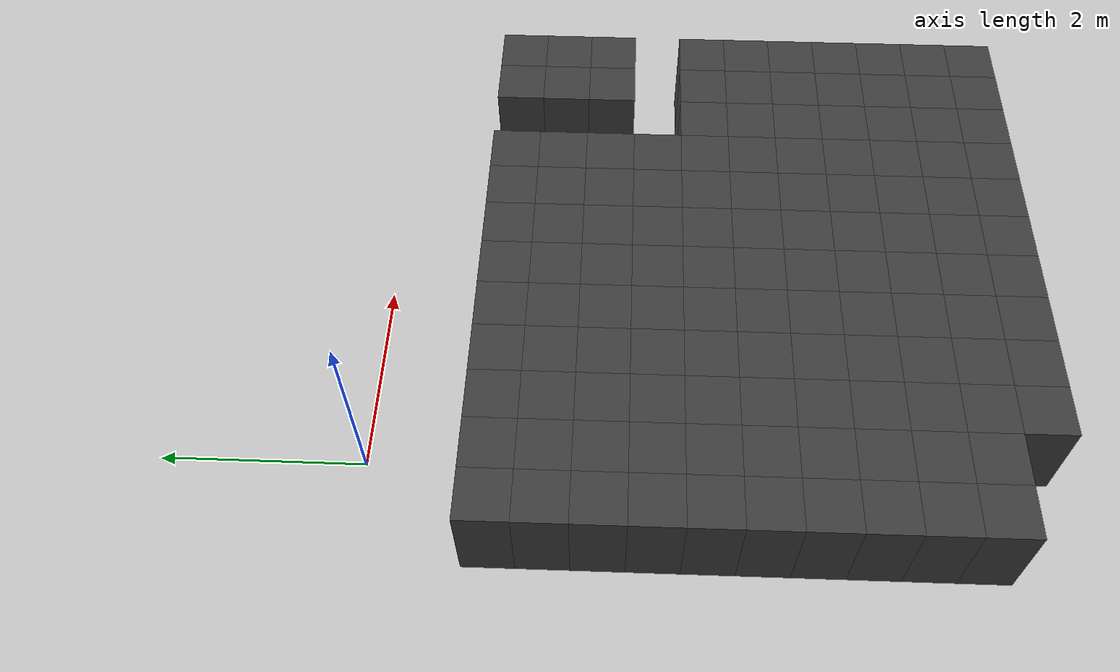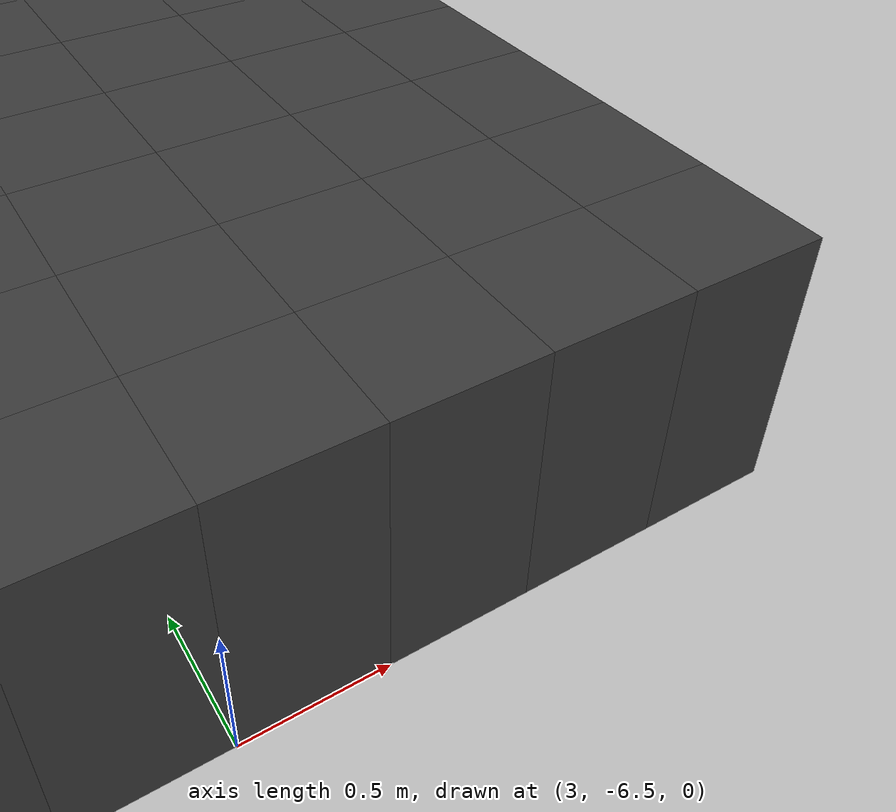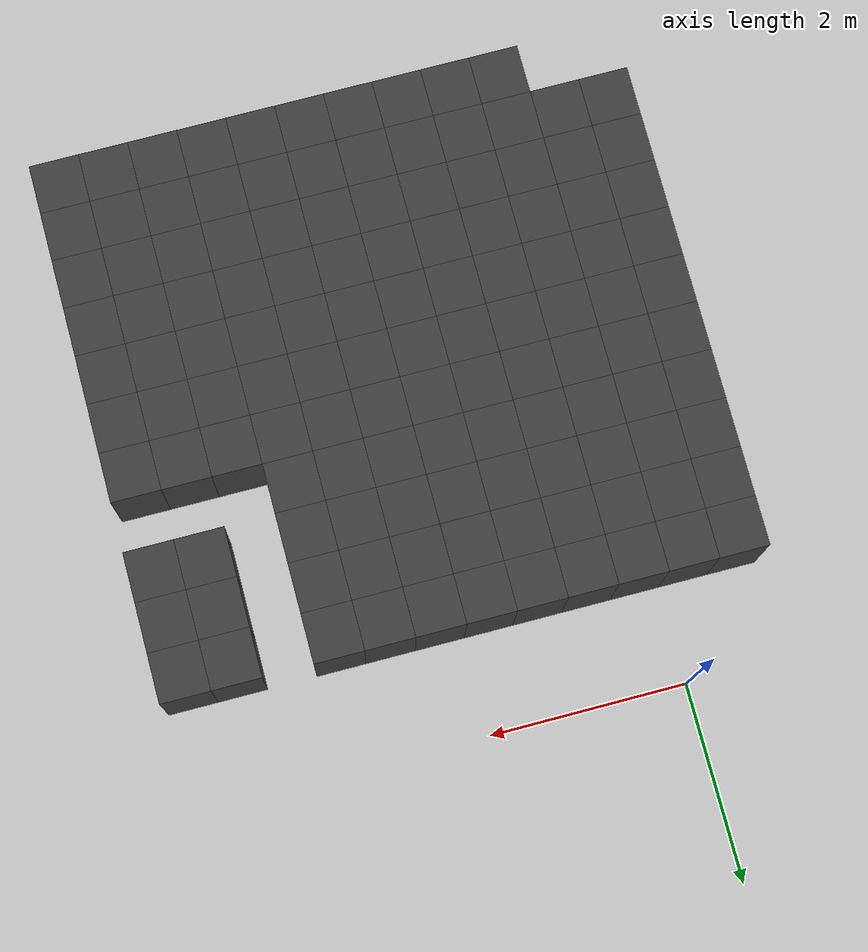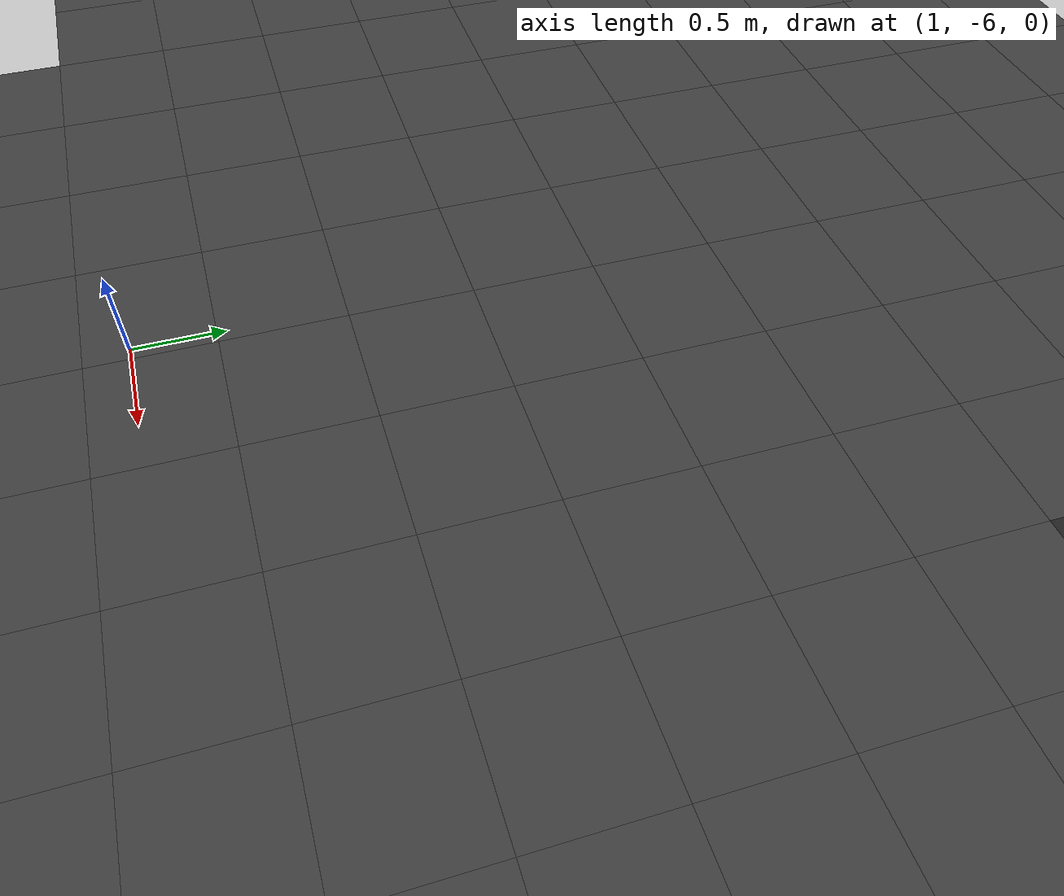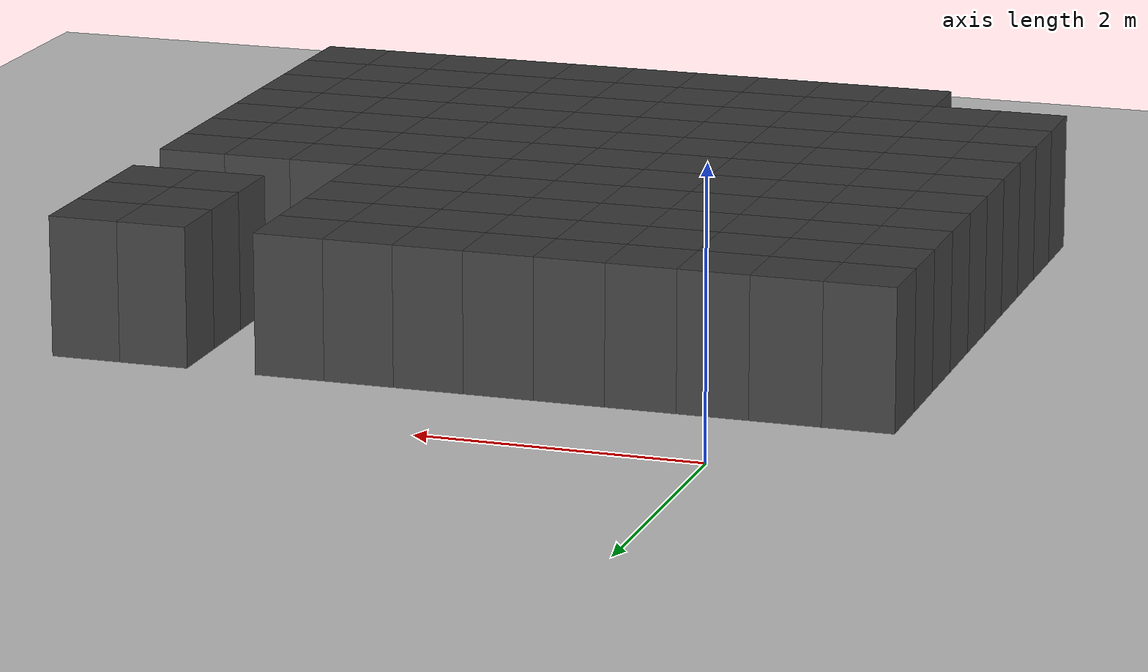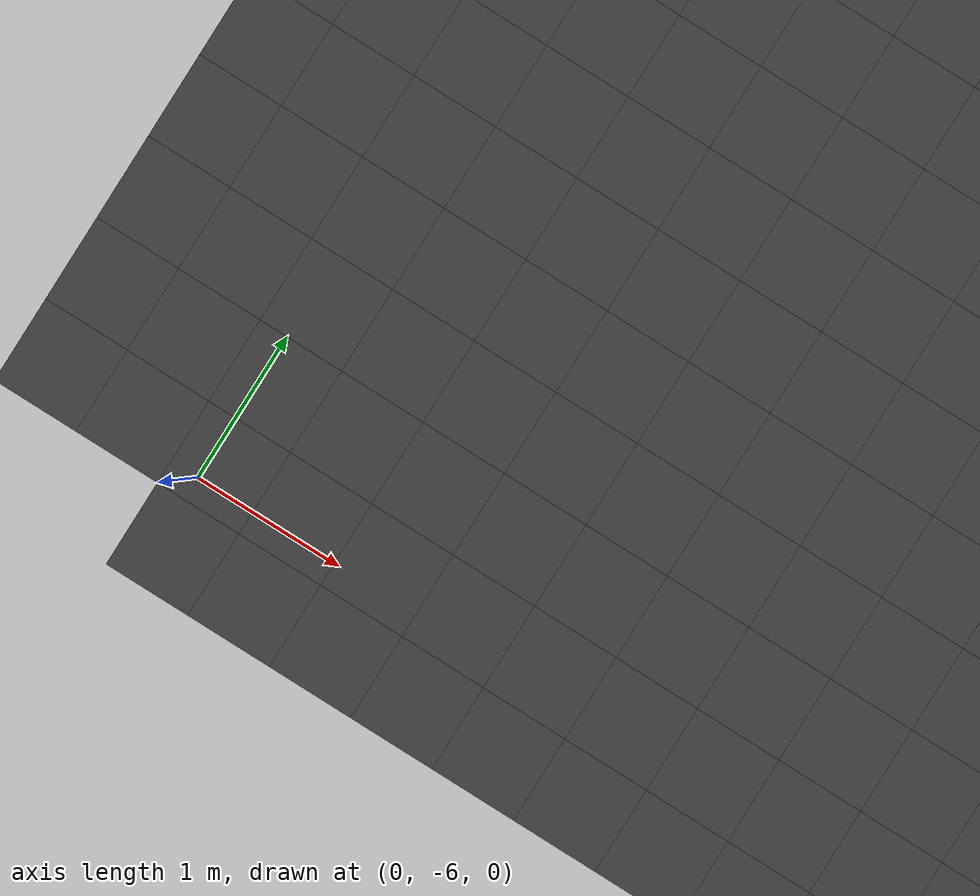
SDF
<sdf version="1.7">
 <world name="map_10726">
  <model name="ground_plane">
   <static>true</static>
   <link name="link">
    <collision name="collision">
     <geometry><plane><normal>0 0 1</normal><size>200 200</size></plane></geometry>
    </collision>
    <visual name="visual">
     <geometry><plane><normal>0 0 1</normal><size>200 200</size></plane></geometry>
     <material><ambient>0.8 0.8 0.8 1</ambient><diffuse>0.8 0.8 0.8 1</diffuse></material>
    </visual>
   </link>
  </model>
  <model name="maze_environment">
   <static>true</static>
   <link name="wall_1214">
    <pose>-0.750 -1.250 0.500 0 0 0</pose>
    <collision name="col"><geometry><box><size>0.5 0.5 1.0</size></box></geometry></collision>
    <visual name="vis">
     <geometry><box><size>0.5 0.5 1.0</size></box></geometry>
     <material><ambient>0.15 0.15 0.15 1</ambient><diffuse>0.25 0.25 0.25 1</diffuse></material>
    </visual>
   </link>
   <link name="wall_1215">
    <pose>-0.250 -1.250 0.500 0 0 0</pose>
    <collision name="col"><geometry><box><size>0.5 0.5 1.0</size></box></geometry></collision>
    <visual name="vis">
     <geometry><box><size>0.5 0.5 1.0</size></box></geometry>
     <material><ambient>0.15 0.15 0.15 1</ambient><diffuse>0.25 0.25 0.25 1</diffuse></material>
    </visual>
   </link>
   <link name="wall_1216">
    <pose>0.250 -1.250 0.500 0 0 0</pose>
    <collision name="col"><geometry><box><size>0.5 0.5 1.0</size></box></geometry></collision>
    <visual name="vis">
     <geometry><box><size>0.5 0.5 1.0</size></box></geometry>
     <material><ambient>0.15 0.15 0.15 1</ambient><diffuse>0.25 0.25 0.25 1</diffuse></material>
    </visual>
   </link>
   <link name="wall_1217">
    <pose>0.750 -1.250 0.500 0 0 0</pose>
    <collision name="col"><geometry><box><size>0.5 0.5 1.0</size></box></geometry></collision>
    <visual name="vis">
     <geometry><box><size>0.5 0.5 1.0</size></box></geometry>
     <material><ambient>0.15 0.15 0.15 1</ambient><diffuse>0.25 0.25 0.25 1</diffuse></material>
    </visual>
   </link>
   <link name="wall_1218">
    <pose>1.250 -1.250 0.500 0 0 0</pose>
    <collision name="col"><geometry><box><size>0.5 0.5 1.0</size></box></geometry></collision>
    <visual name="vis">
     <geometry><box><size>0.5 0.5 1.0</size></box></geometry>
     <material><ambient>0.15 0.15 0.15 1</ambient><diffuse>0.25 0.25 0.25 1</diffuse></material>
    </visual>
   </link>
   <link name="wall_1219">
    <pose>1.750 -1.250 0.500 0 0 0</pose>
    <collision name="col"><geometry><box><size>0.5 0.5 1.0</size></box></geometry></collision>
    <visual name="vis">
     <geometry><box><size>0.5 0.5 1.0</size></box></geometry>
     <material><ambient>0.15 0.15 0.15 1</ambient><diffuse>0.25 0.25 0.25 1</diffuse></material>
    </visual>
   </link>
   <link name="wall_1220">
    <pose>2.250 -1.250 0.500 0 0 0</pose>
    <collision name="col"><geometry><box><size>0.5 0.5 1.0</size></box></geometry></collision>
    <visual name="vis">
     <geometry><box><size>0.5 0.5 1.0</size></box></geometry>
     <material><ambient>0.15 0.15 0.15 1</ambient><diffuse>0.25 0.25 0.25 1</diffuse></material>
    </visual>
   </link>
   <link name="wall_1221">
    <pose>2.750 -1.250 0.500 0 0 0</pose>
    <collision name="col"><geometry><box><size>0.5 0.5 1.0</size></box></geometry></collision>
    <visual name="vis">
     <geometry><box><size>0.5 0.5 1.0</size></box></geometry>
     <material><ambient>0.15 0.15 0.15 1</ambient><diffuse>0.25 0.25 0.25 1</diffuse></material>
    </visual>
   </link>
   <link name="wall_1222">
    <pose>3.250 -1.250 0.500 0 0 0</pose>
    <collision name="col"><geometry><box><size>0.5 0.5 1.0</size></box></geometry></collision>
    <visual name="vis">
     <geometry><box><size>0.5 0.5 1.0</size></box></geometry>
     <material><ambient>0.15 0.15 0.15 1</ambient><diffuse>0.25 0.25 0.25 1</diffuse></material>
    </visual>
   </link>
   <link name="wall_1223">
    <pose>4.250 -1.250 0.500 0 0 0</pose>
    <collision name="col"><geometry><box><size>0.5 0.5 1.0</size></box></geometry></collision>
    <visual name="vis">
     <geometry><box><size>0.5 0.5 1.0</size></box></geometry>
     <material><ambient>0.15 0.15 0.15 1</ambient><diffuse>0.25 0.25 0.25 1</diffuse></material>
    </visual>
   </link>
   <link name="wall_1224">
    <pose>4.750 -1.250 0.500 0 0 0</pose>
    <collision name="col"><geometry><box><size>0.5 0.5 1.0</size></box></geometry></collision>
    <visual name="vis">
     <geometry><box><size>0.5 0.5 1.0</size></box></geometry>
     <material><ambient>0.15 0.15 0.15 1</ambient><diffuse>0.25 0.25 0.25 1</diffuse></material>
    </visual>
   </link>
   <link name="wall_1254">
    <pose>-0.750 -1.750 0.500 0 0 0</pose>
    <collision name="col"><geometry><box><size>0.5 0.5 1.0</size></box></geometry></collision>
    <visual name="vis">
     <geometry><box><size>0.5 0.5 1.0</size></box></geometry>
     <material><ambient>0.15 0.15 0.15 1</ambient><diffuse>0.25 0.25 0.25 1</diffuse></material>
    </visual>
   </link>
   <link name="wall_1255">
    <pose>-0.250 -1.750 0.500 0 0 0</pose>
    <collision name="col"><geometry><box><size>0.5 0.5 1.0</size></box></geometry></collision>
    <visual name="vis">
     <geometry><box><size>0.5 0.5 1.0</size></box></geometry>
     <material><ambient>0.15 0.15 0.15 1</ambient><diffuse>0.25 0.25 0.25 1</diffuse></material>
    </visual>
   </link>
   <link name="wall_1256">
    <pose>0.250 -1.750 0.500 0 0 0</pose>
    <collision name="col"><geometry><box><size>0.5 0.5 1.0</size></box></geometry></collision>
    <visual name="vis">
     <geometry><box><size>0.5 0.5 1.0</size></box></geometry>
     <material><ambient>0.15 0.15 0.15 1</ambient><diffuse>0.25 0.25 0.25 1</diffuse></material>
    </visual>
   </link>
   <link name="wall_1257">
    <pose>0.750 -1.750 0.500 0 0 0</pose>
    <collision name="col"><geometry><box><size>0.5 0.5 1.0</size></box></geometry></collision>
    <visual name="vis">
     <geometry><box><size>0.5 0.5 1.0</size></box></geometry>
     <material><ambient>0.15 0.15 0.15 1</ambient><diffuse>0.25 0.25 0.25 1</diffuse></material>
    </visual>
   </link>
   <link name="wall_1258">
    <pose>1.250 -1.750 0.500 0 0 0</pose>
    <collision name="col"><geometry><box><size>0.5 0.5 1.0</size></box></geometry></collision>
    <visual name="vis">
     <geometry><box><size>0.5 0.5 1.0</size></box></geometry>
     <material><ambient>0.15 0.15 0.15 1</ambient><diffuse>0.25 0.25 0.25 1</diffuse></material>
    </visual>
   </link>
   <link name="wall_1259">
    <pose>1.750 -1.750 0.500 0 0 0</pose>
    <collision name="col"><geometry><box><size>0.5 0.5 1.0</size></box></geometry></collision>
    <visual name="vis">
     <geometry><box><size>0.5 0.5 1.0</size></box></geometry>
     <material><ambient>0.15 0.15 0.15 1</ambient><diffuse>0.25 0.25 0.25 1</diffuse></material>
    </visual>
   </link>
   <link name="wall_1260">
    <pose>2.250 -1.750 0.500 0 0 0</pose>
    <collision name="col"><geometry><box><size>0.5 0.5 1.0</size></box></geometry></collision>
    <visual name="vis">
     <geometry><box><size>0.5 0.5 1.0</size></box></geometry>
     <material><ambient>0.15 0.15 0.15 1</ambient><diffuse>0.25 0.25 0.25 1</diffuse></material>
    </visual>
   </link>
   <link name="wall_1261">
    <pose>2.750 -1.750 0.500 0 0 0</pose>
    <collision name="col"><geometry><box><size>0.5 0.5 1.0</size></box></geometry></collision>
    <visual name="vis">
     <geometry><box><size>0.5 0.5 1.0</size></box></geometry>
     <material><ambient>0.15 0.15 0.15 1</ambient><diffuse>0.25 0.25 0.25 1</diffuse></material>
    </visual>
   </link>
   <link name="wall_1262">
    <pose>3.250 -1.750 0.500 0 0 0</pose>
    <collision name="col"><geometry><box><size>0.5 0.5 1.0</size></box></geometry></collision>
    <visual name="vis">
     <geometry><box><size>0.5 0.5 1.0</size></box></geometry>
     <material><ambient>0.15 0.15 0.15 1</ambient><diffuse>0.25 0.25 0.25 1</diffuse></material>
    </visual>
   </link>
   <link name="wall_1263">
    <pose>4.250 -1.750 0.500 0 0 0</pose>
    <collision name="col"><geometry><box><size>0.5 0.5 1.0</size></box></geometry></collision>
    <visual name="vis">
     <geometry><box><size>0.5 0.5 1.0</size></box></geometry>
     <material><ambient>0.15 0.15 0.15 1</ambient><diffuse>0.25 0.25 0.25 1</diffuse></material>
    </visual>
   </link>
   <link name="wall_1264">
    <pose>4.750 -1.750 0.500 0 0 0</pose>
    <collision name="col"><geometry><box><size>0.5 0.5 1.0</size></box></geometry></collision>
    <visual name="vis">
     <geometry><box><size>0.5 0.5 1.0</size></box></geometry>
     <material><ambient>0.15 0.15 0.15 1</ambient><diffuse>0.25 0.25 0.25 1</diffuse></material>
    </visual>
   </link>
   <link name="wall_1286">
    <pose>-0.750 -2.250 0.500 0 0 0</pose>
    <collision name="col"><geometry><box><size>0.5 0.5 1.0</size></box></geometry></collision>
    <visual name="vis">
     <geometry><box><size>0.5 0.5 1.0</size></box></geometry>
     <material><ambient>0.15 0.15 0.15 1</ambient><diffuse>0.25 0.25 0.25 1</diffuse></material>
    </visual>
   </link>
   <link name="wall_1287">
    <pose>-0.250 -2.250 0.500 0 0 0</pose>
    <collision name="col"><geometry><box><size>0.5 0.5 1.0</size></box></geometry></collision>
    <visual name="vis">
     <geometry><box><size>0.5 0.5 1.0</size></box></geometry>
     <material><ambient>0.15 0.15 0.15 1</ambient><diffuse>0.25 0.25 0.25 1</diffuse></material>
    </visual>
   </link>
   <link name="wall_1288">
    <pose>0.250 -2.250 0.500 0 0 0</pose>
    <collision name="col"><geometry><box><size>0.5 0.5 1.0</size></box></geometry></collision>
    <visual name="vis">
     <geometry><box><size>0.5 0.5 1.0</size></box></geometry>
     <material><ambient>0.15 0.15 0.15 1</ambient><diffuse>0.25 0.25 0.25 1</diffuse></material>
    </visual>
   </link>
   <link name="wall_1289">
    <pose>0.750 -2.250 0.500 0 0 0</pose>
    <collision name="col"><geometry><box><size>0.5 0.5 1.0</size></box></geometry></collision>
    <visual name="vis">
     <geometry><box><size>0.5 0.5 1.0</size></box></geometry>
     <material><ambient>0.15 0.15 0.15 1</ambient><diffuse>0.25 0.25 0.25 1</diffuse></material>
    </visual>
   </link>
   <link name="wall_1290">
    <pose>1.250 -2.250 0.500 0 0 0</pose>
    <collision name="col"><geometry><box><size>0.5 0.5 1.0</size></box></geometry></collision>
    <visual name="vis">
     <geometry><box><size>0.5 0.5 1.0</size></box></geometry>
     <material><ambient>0.15 0.15 0.15 1</ambient><diffuse>0.25 0.25 0.25 1</diffuse></material>
    </visual>
   </link>
   <link name="wall_1291">
    <pose>1.750 -2.250 0.500 0 0 0</pose>
    <collision name="col"><geometry><box><size>0.5 0.5 1.0</size></box></geometry></collision>
    <visual name="vis">
     <geometry><box><size>0.5 0.5 1.0</size></box></geometry>
     <material><ambient>0.15 0.15 0.15 1</ambient><diffuse>0.25 0.25 0.25 1</diffuse></material>
    </visual>
   </link>
   <link name="wall_1292">
    <pose>2.250 -2.250 0.500 0 0 0</pose>
    <collision name="col"><geometry><box><size>0.5 0.5 1.0</size></box></geometry></collision>
    <visual name="vis">
     <geometry><box><size>0.5 0.5 1.0</size></box></geometry>
     <material><ambient>0.15 0.15 0.15 1</ambient><diffuse>0.25 0.25 0.25 1</diffuse></material>
    </visual>
   </link>
   <link name="wall_1293">
    <pose>2.750 -2.250 0.500 0 0 0</pose>
    <collision name="col"><geometry><box><size>0.5 0.5 1.0</size></box></geometry></collision>
    <visual name="vis">
     <geometry><box><size>0.5 0.5 1.0</size></box></geometry>
     <material><ambient>0.15 0.15 0.15 1</ambient><diffuse>0.25 0.25 0.25 1</diffuse></material>
    </visual>
   </link>
   <link name="wall_1294">
    <pose>3.250 -2.250 0.500 0 0 0</pose>
    <collision name="col"><geometry><box><size>0.5 0.5 1.0</size></box></geometry></collision>
    <visual name="vis">
     <geometry><box><size>0.5 0.5 1.0</size></box></geometry>
     <material><ambient>0.15 0.15 0.15 1</ambient><diffuse>0.25 0.25 0.25 1</diffuse></material>
    </visual>
   </link>
   <link name="wall_1295">
    <pose>4.250 -2.250 0.500 0 0 0</pose>
    <collision name="col"><geometry><box><size>0.5 0.5 1.0</size></box></geometry></collision>
    <visual name="vis">
     <geometry><box><size>0.5 0.5 1.0</size></box></geometry>
     <material><ambient>0.15 0.15 0.15 1</ambient><diffuse>0.25 0.25 0.25 1</diffuse></material>
    </visual>
   </link>
   <link name="wall_1296">
    <pose>4.750 -2.250 0.500 0 0 0</pose>
    <collision name="col"><geometry><box><size>0.5 0.5 1.0</size></box></geometry></collision>
    <visual name="vis">
     <geometry><box><size>0.5 0.5 1.0</size></box></geometry>
     <material><ambient>0.15 0.15 0.15 1</ambient><diffuse>0.25 0.25 0.25 1</diffuse></material>
    </visual>
   </link>
   <link name="wall_1312">
    <pose>-0.750 -2.750 0.500 0 0 0</pose>
    <collision name="col"><geometry><box><size>0.5 0.5 1.0</size></box></geometry></collision>
    <visual name="vis">
     <geometry><box><size>0.5 0.5 1.0</size></box></geometry>
     <material><ambient>0.15 0.15 0.15 1</ambient><diffuse>0.25 0.25 0.25 1</diffuse></material>
    </visual>
   </link>
   <link name="wall_1313">
    <pose>-0.250 -2.750 0.500 0 0 0</pose>
    <collision name="col"><geometry><box><size>0.5 0.5 1.0</size></box></geometry></collision>
    <visual name="vis">
     <geometry><box><size>0.5 0.5 1.0</size></box></geometry>
     <material><ambient>0.15 0.15 0.15 1</ambient><diffuse>0.25 0.25 0.25 1</diffuse></material>
    </visual>
   </link>
   <link name="wall_1314">
    <pose>0.250 -2.750 0.500 0 0 0</pose>
    <collision name="col"><geometry><box><size>0.5 0.5 1.0</size></box></geometry></collision>
    <visual name="vis">
     <geometry><box><size>0.5 0.5 1.0</size></box></geometry>
     <material><ambient>0.15 0.15 0.15 1</ambient><diffuse>0.25 0.25 0.25 1</diffuse></material>
    </visual>
   </link>
   <link name="wall_1315">
    <pose>0.750 -2.750 0.500 0 0 0</pose>
    <collision name="col"><geometry><box><size>0.5 0.5 1.0</size></box></geometry></collision>
    <visual name="vis">
     <geometry><box><size>0.5 0.5 1.0</size></box></geometry>
     <material><ambient>0.15 0.15 0.15 1</ambient><diffuse>0.25 0.25 0.25 1</diffuse></material>
    </visual>
   </link>
   <link name="wall_1316">
    <pose>1.250 -2.750 0.500 0 0 0</pose>
    <collision name="col"><geometry><box><size>0.5 0.5 1.0</size></box></geometry></collision>
    <visual name="vis">
     <geometry><box><size>0.5 0.5 1.0</size></box></geometry>
     <material><ambient>0.15 0.15 0.15 1</ambient><diffuse>0.25 0.25 0.25 1</diffuse></material>
    </visual>
   </link>
   <link name="wall_1317">
    <pose>1.750 -2.750 0.500 0 0 0</pose>
    <collision name="col"><geometry><box><size>0.5 0.5 1.0</size></box></geometry></collision>
    <visual name="vis">
     <geometry><box><size>0.5 0.5 1.0</size></box></geometry>
     <material><ambient>0.15 0.15 0.15 1</ambient><diffuse>0.25 0.25 0.25 1</diffuse></material>
    </visual>
   </link>
   <link name="wall_1318">
    <pose>2.250 -2.750 0.500 0 0 0</pose>
    <collision name="col"><geometry><box><size>0.5 0.5 1.0</size></box></geometry></collision>
    <visual name="vis">
     <geometry><box><size>0.5 0.5 1.0</size></box></geometry>
     <material><ambient>0.15 0.15 0.15 1</ambient><diffuse>0.25 0.25 0.25 1</diffuse></material>
    </visual>
   </link>
   <link name="wall_1319">
    <pose>2.750 -2.750 0.500 0 0 0</pose>
    <collision name="col"><geometry><box><size>0.5 0.5 1.0</size></box></geometry></collision>
    <visual name="vis">
     <geometry><box><size>0.5 0.5 1.0</size></box></geometry>
     <material><ambient>0.15 0.15 0.15 1</ambient><diffuse>0.25 0.25 0.25 1</diffuse></material>
    </visual>
   </link>
   <link name="wall_1320">
    <pose>3.250 -2.750 0.500 0 0 0</pose>
    <collision name="col"><geometry><box><size>0.5 0.5 1.0</size></box></geometry></collision>
    <visual name="vis">
     <geometry><box><size>0.5 0.5 1.0</size></box></geometry>
     <material><ambient>0.15 0.15 0.15 1</ambient><diffuse>0.25 0.25 0.25 1</diffuse></material>
    </visual>
   </link>
   <link name="wall_1341">
    <pose>-0.750 -3.250 0.500 0 0 0</pose>
    <collision name="col"><geometry><box><size>0.5 0.5 1.0</size></box></geometry></collision>
    <visual name="vis">
     <geometry><box><size>0.5 0.5 1.0</size></box></geometry>
     <material><ambient>0.15 0.15 0.15 1</ambient><diffuse>0.25 0.25 0.25 1</diffuse></material>
    </visual>
   </link>
   <link name="wall_1342">
    <pose>-0.250 -3.250 0.500 0 0 0</pose>
    <collision name="col"><geometry><box><size>0.5 0.5 1.0</size></box></geometry></collision>
    <visual name="vis">
     <geometry><box><size>0.5 0.5 1.0</size></box></geometry>
     <material><ambient>0.15 0.15 0.15 1</ambient><diffuse>0.25 0.25 0.25 1</diffuse></material>
    </visual>
   </link>
   <link name="wall_1343">
    <pose>0.250 -3.250 0.500 0 0 0</pose>
    <collision name="col"><geometry><box><size>0.5 0.5 1.0</size></box></geometry></collision>
    <visual name="vis">
     <geometry><box><size>0.5 0.5 1.0</size></box></geometry>
     <material><ambient>0.15 0.15 0.15 1</ambient><diffuse>0.25 0.25 0.25 1</diffuse></material>
    </visual>
   </link>
   <link name="wall_1344">
    <pose>0.750 -3.250 0.500 0 0 0</pose>
    <collision name="col"><geometry><box><size>0.5 0.5 1.0</size></box></geometry></collision>
    <visual name="vis">
     <geometry><box><size>0.5 0.5 1.0</size></box></geometry>
     <material><ambient>0.15 0.15 0.15 1</ambient><diffuse>0.25 0.25 0.25 1</diffuse></material>
    </visual>
   </link>
   <link name="wall_1345">
    <pose>1.250 -3.250 0.500 0 0 0</pose>
    <collision name="col"><geometry><box><size>0.5 0.5 1.0</size></box></geometry></collision>
    <visual name="vis">
     <geometry><box><size>0.5 0.5 1.0</size></box></geometry>
     <material><ambient>0.15 0.15 0.15 1</ambient><diffuse>0.25 0.25 0.25 1</diffuse></material>
    </visual>
   </link>
   <link name="wall_1346">
    <pose>1.750 -3.250 0.500 0 0 0</pose>
    <collision name="col"><geometry><box><size>0.5 0.5 1.0</size></box></geometry></collision>
    <visual name="vis">
     <geometry><box><size>0.5 0.5 1.0</size></box></geometry>
     <material><ambient>0.15 0.15 0.15 1</ambient><diffuse>0.25 0.25 0.25 1</diffuse></material>
    </visual>
   </link>
   <link name="wall_1347">
    <pose>2.250 -3.250 0.500 0 0 0</pose>
    <collision name="col"><geometry><box><size>0.5 0.5 1.0</size></box></geometry></collision>
    <visual name="vis">
     <geometry><box><size>0.5 0.5 1.0</size></box></geometry>
     <material><ambient>0.15 0.15 0.15 1</ambient><diffuse>0.25 0.25 0.25 1</diffuse></material>
    </visual>
   </link>
   <link name="wall_1348">
    <pose>2.750 -3.250 0.500 0 0 0</pose>
    <collision name="col"><geometry><box><size>0.5 0.5 1.0</size></box></geometry></collision>
    <visual name="vis">
     <geometry><box><size>0.5 0.5 1.0</size></box></geometry>
     <material><ambient>0.15 0.15 0.15 1</ambient><diffuse>0.25 0.25 0.25 1</diffuse></material>
    </visual>
   </link>
   <link name="wall_1349">
    <pose>3.250 -3.250 0.500 0 0 0</pose>
    <collision name="col"><geometry><box><size>0.5 0.5 1.0</size></box></geometry></collision>
    <visual name="vis">
     <geometry><box><size>0.5 0.5 1.0</size></box></geometry>
     <material><ambient>0.15 0.15 0.15 1</ambient><diffuse>0.25 0.25 0.25 1</diffuse></material>
    </visual>
   </link>
   <link name="wall_1350">
    <pose>3.750 -3.250 0.500 0 0 0</pose>
    <collision name="col"><geometry><box><size>0.5 0.5 1.0</size></box></geometry></collision>
    <visual name="vis">
     <geometry><box><size>0.5 0.5 1.0</size></box></geometry>
     <material><ambient>0.15 0.15 0.15 1</ambient><diffuse>0.25 0.25 0.25 1</diffuse></material>
    </visual>
   </link>
   <link name="wall_1351">
    <pose>4.250 -3.250 0.500 0 0 0</pose>
    <collision name="col"><geometry><box><size>0.5 0.5 1.0</size></box></geometry></collision>
    <visual name="vis">
     <geometry><box><size>0.5 0.5 1.0</size></box></geometry>
     <material><ambient>0.15 0.15 0.15 1</ambient><diffuse>0.25 0.25 0.25 1</diffuse></material>
    </visual>
   </link>
   <link name="wall_1352">
    <pose>4.750 -3.250 0.500 0 0 0</pose>
    <collision name="col"><geometry><box><size>0.5 0.5 1.0</size></box></geometry></collision>
    <visual name="vis">
     <geometry><box><size>0.5 0.5 1.0</size></box></geometry>
     <material><ambient>0.15 0.15 0.15 1</ambient><diffuse>0.25 0.25 0.25 1</diffuse></material>
    </visual>
   </link>
   <link name="wall_1373">
    <pose>-0.750 -3.750 0.500 0 0 0</pose>
    <collision name="col"><geometry><box><size>0.5 0.5 1.0</size></box></geometry></collision>
    <visual name="vis">
     <geometry><box><size>0.5 0.5 1.0</size></box></geometry>
     <material><ambient>0.15 0.15 0.15 1</ambient><diffuse>0.25 0.25 0.25 1</diffuse></material>
    </visual>
   </link>
   <link name="wall_1374">
    <pose>-0.250 -3.750 0.500 0 0 0</pose>
    <collision name="col"><geometry><box><size>0.5 0.5 1.0</size></box></geometry></collision>
    <visual name="vis">
     <geometry><box><size>0.5 0.5 1.0</size></box></geometry>
     <material><ambient>0.15 0.15 0.15 1</ambient><diffuse>0.25 0.25 0.25 1</diffuse></material>
    </visual>
   </link>
   <link name="wall_1375">
    <pose>0.250 -3.750 0.500 0 0 0</pose>
    <collision name="col"><geometry><box><size>0.5 0.5 1.0</size></box></geometry></collision>
    <visual name="vis">
     <geometry><box><size>0.5 0.5 1.0</size></box></geometry>
     <material><ambient>0.15 0.15 0.15 1</ambient><diffuse>0.25 0.25 0.25 1</diffuse></material>
    </visual>
   </link>
   <link name="wall_1376">
    <pose>0.750 -3.750 0.500 0 0 0</pose>
    <collision name="col"><geometry><box><size>0.5 0.5 1.0</size></box></geometry></collision>
    <visual name="vis">
     <geometry><box><size>0.5 0.5 1.0</size></box></geometry>
     <material><ambient>0.15 0.15 0.15 1</ambient><diffuse>0.25 0.25 0.25 1</diffuse></material>
    </visual>
   </link>
   <link name="wall_1377">
    <pose>1.250 -3.750 0.500 0 0 0</pose>
    <collision name="col"><geometry><box><size>0.5 0.5 1.0</size></box></geometry></collision>
    <visual name="vis">
     <geometry><box><size>0.5 0.5 1.0</size></box></geometry>
     <material><ambient>0.15 0.15 0.15 1</ambient><diffuse>0.25 0.25 0.25 1</diffuse></material>
    </visual>
   </link>
   <link name="wall_1378">
    <pose>1.750 -3.750 0.500 0 0 0</pose>
    <collision name="col"><geometry><box><size>0.5 0.5 1.0</size></box></geometry></collision>
    <visual name="vis">
     <geometry><box><size>0.5 0.5 1.0</size></box></geometry>
     <material><ambient>0.15 0.15 0.15 1</ambient><diffuse>0.25 0.25 0.25 1</diffuse></material>
    </visual>
   </link>
   <link name="wall_1379">
    <pose>2.250 -3.750 0.500 0 0 0</pose>
    <collision name="col"><geometry><box><size>0.5 0.5 1.0</size></box></geometry></collision>
    <visual name="vis">
     <geometry><box><size>0.5 0.5 1.0</size></box></geometry>
     <material><ambient>0.15 0.15 0.15 1</ambient><diffuse>0.25 0.25 0.25 1</diffuse></material>
    </visual>
   </link>
   <link name="wall_1380">
    <pose>2.750 -3.750 0.500 0 0 0</pose>
    <collision name="col"><geometry><box><size>0.5 0.5 1.0</size></box></geometry></collision>
    <visual name="vis">
     <geometry><box><size>0.5 0.5 1.0</size></box></geometry>
     <material><ambient>0.15 0.15 0.15 1</ambient><diffuse>0.25 0.25 0.25 1</diffuse></material>
    </visual>
   </link>
   <link name="wall_1381">
    <pose>3.250 -3.750 0.500 0 0 0</pose>
    <collision name="col"><geometry><box><size>0.5 0.5 1.0</size></box></geometry></collision>
    <visual name="vis">
     <geometry><box><size>0.5 0.5 1.0</size></box></geometry>
     <material><ambient>0.15 0.15 0.15 1</ambient><diffuse>0.25 0.25 0.25 1</diffuse></material>
    </visual>
   </link>
   <link name="wall_1382">
    <pose>3.750 -3.750 0.500 0 0 0</pose>
    <collision name="col"><geometry><box><size>0.5 0.5 1.0</size></box></geometry></collision>
    <visual name="vis">
     <geometry><box><size>0.5 0.5 1.0</size></box></geometry>
     <material><ambient>0.15 0.15 0.15 1</ambient><diffuse>0.25 0.25 0.25 1</diffuse></material>
    </visual>
   </link>
   <link name="wall_1383">
    <pose>4.250 -3.750 0.500 0 0 0</pose>
    <collision name="col"><geometry><box><size>0.5 0.5 1.0</size></box></geometry></collision>
    <visual name="vis">
     <geometry><box><size>0.5 0.5 1.0</size></box></geometry>
     <material><ambient>0.15 0.15 0.15 1</ambient><diffuse>0.25 0.25 0.25 1</diffuse></material>
    </visual>
   </link>
   <link name="wall_1384">
    <pose>4.750 -3.750 0.500 0 0 0</pose>
    <collision name="col"><geometry><box><size>0.5 0.5 1.0</size></box></geometry></collision>
    <visual name="vis">
     <geometry><box><size>0.5 0.5 1.0</size></box></geometry>
     <material><ambient>0.15 0.15 0.15 1</ambient><diffuse>0.25 0.25 0.25 1</diffuse></material>
    </visual>
   </link>
   <link name="wall_1407">
    <pose>-0.750 -4.250 0.500 0 0 0</pose>
    <collision name="col"><geometry><box><size>0.5 0.5 1.0</size></box></geometry></collision>
    <visual name="vis">
     <geometry><box><size>0.5 0.5 1.0</size></box></geometry>
     <material><ambient>0.15 0.15 0.15 1</ambient><diffuse>0.25 0.25 0.25 1</diffuse></material>
    </visual>
   </link>
   <link name="wall_1408">
    <pose>-0.250 -4.250 0.500 0 0 0</pose>
    <collision name="col"><geometry><box><size>0.5 0.5 1.0</size></box></geometry></collision>
    <visual name="vis">
     <geometry><box><size>0.5 0.5 1.0</size></box></geometry>
     <material><ambient>0.15 0.15 0.15 1</ambient><diffuse>0.25 0.25 0.25 1</diffuse></material>
    </visual>
   </link>
   <link name="wall_1409">
    <pose>0.250 -4.250 0.500 0 0 0</pose>
    <collision name="col"><geometry><box><size>0.5 0.5 1.0</size></box></geometry></collision>
    <visual name="vis">
     <geometry><box><size>0.5 0.5 1.0</size></box></geometry>
     <material><ambient>0.15 0.15 0.15 1</ambient><diffuse>0.25 0.25 0.25 1</diffuse></material>
    </visual>
   </link>
   <link name="wall_1410">
    <pose>0.750 -4.250 0.500 0 0 0</pose>
    <collision name="col"><geometry><box><size>0.5 0.5 1.0</size></box></geometry></collision>
    <visual name="vis">
     <geometry><box><size>0.5 0.5 1.0</size></box></geometry>
     <material><ambient>0.15 0.15 0.15 1</ambient><diffuse>0.25 0.25 0.25 1</diffuse></material>
    </visual>
   </link>
   <link name="wall_1411">
    <pose>1.250 -4.250 0.500 0 0 0</pose>
    <collision name="col"><geometry><box><size>0.5 0.5 1.0</size></box></geometry></collision>
    <visual name="vis">
     <geometry><box><size>0.5 0.5 1.0</size></box></geometry>
     <material><ambient>0.15 0.15 0.15 1</ambient><diffuse>0.25 0.25 0.25 1</diffuse></material>
    </visual>
   </link>
   <link name="wall_1412">
    <pose>1.750 -4.250 0.500 0 0 0</pose>
    <collision name="col"><geometry><box><size>0.5 0.5 1.0</size></box></geometry></collision>
    <visual name="vis">
     <geometry><box><size>0.5 0.5 1.0</size></box></geometry>
     <material><ambient>0.15 0.15 0.15 1</ambient><diffuse>0.25 0.25 0.25 1</diffuse></material>
    </visual>
   </link>
   <link name="wall_1413">
    <pose>2.250 -4.250 0.500 0 0 0</pose>
    <collision name="col"><geometry><box><size>0.5 0.5 1.0</size></box></geometry></collision>
    <visual name="vis">
     <geometry><box><size>0.5 0.5 1.0</size></box></geometry>
     <material><ambient>0.15 0.15 0.15 1</ambient><diffuse>0.25 0.25 0.25 1</diffuse></material>
    </visual>
   </link>
   <link name="wall_1414">
    <pose>2.750 -4.250 0.500 0 0 0</pose>
    <collision name="col"><geometry><box><size>0.5 0.5 1.0</size></box></geometry></collision>
    <visual name="vis">
     <geometry><box><size>0.5 0.5 1.0</size></box></geometry>
     <material><ambient>0.15 0.15 0.15 1</ambient><diffuse>0.25 0.25 0.25 1</diffuse></material>
    </visual>
   </link>
   <link name="wall_1415">
    <pose>3.250 -4.250 0.500 0 0 0</pose>
    <collision name="col"><geometry><box><size>0.5 0.5 1.0</size></box></geometry></collision>
    <visual name="vis">
     <geometry><box><size>0.5 0.5 1.0</size></box></geometry>
     <material><ambient>0.15 0.15 0.15 1</ambient><diffuse>0.25 0.25 0.25 1</diffuse></material>
    </visual>
   </link>
   <link name="wall_1416">
    <pose>3.750 -4.250 0.500 0 0 0</pose>
    <collision name="col"><geometry><box><size>0.5 0.5 1.0</size></box></geometry></collision>
    <visual name="vis">
     <geometry><box><size>0.5 0.5 1.0</size></box></geometry>
     <material><ambient>0.15 0.15 0.15 1</ambient><diffuse>0.25 0.25 0.25 1</diffuse></material>
    </visual>
   </link>
   <link name="wall_1417">
    <pose>4.250 -4.250 0.500 0 0 0</pose>
    <collision name="col"><geometry><box><size>0.5 0.5 1.0</size></box></geometry></collision>
    <visual name="vis">
     <geometry><box><size>0.5 0.5 1.0</size></box></geometry>
     <material><ambient>0.15 0.15 0.15 1</ambient><diffuse>0.25 0.25 0.25 1</diffuse></material>
    </visual>
   </link>
   <link name="wall_1418">
    <pose>4.750 -4.250 0.500 0 0 0</pose>
    <collision name="col"><geometry><box><size>0.5 0.5 1.0</size></box></geometry></collision>
    <visual name="vis">
     <geometry><box><size>0.5 0.5 1.0</size></box></geometry>
     <material><ambient>0.15 0.15 0.15 1</ambient><diffuse>0.25 0.25 0.25 1</diffuse></material>
    </visual>
   </link>
   <link name="wall_1448">
    <pose>-0.750 -4.750 0.500 0 0 0</pose>
    <collision name="col"><geometry><box><size>0.5 0.5 1.0</size></box></geometry></collision>
    <visual name="vis">
     <geometry><box><size>0.5 0.5 1.0</size></box></geometry>
     <material><ambient>0.15 0.15 0.15 1</ambient><diffuse>0.25 0.25 0.25 1</diffuse></material>
    </visual>
   </link>
   <link name="wall_1449">
    <pose>-0.250 -4.750 0.500 0 0 0</pose>
    <collision name="col"><geometry><box><size>0.5 0.5 1.0</size></box></geometry></collision>
    <visual name="vis">
     <geometry><box><size>0.5 0.5 1.0</size></box></geometry>
     <material><ambient>0.15 0.15 0.15 1</ambient><diffuse>0.25 0.25 0.25 1</diffuse></material>
    </visual>
   </link>
   <link name="wall_1450">
    <pose>0.250 -4.750 0.500 0 0 0</pose>
    <collision name="col"><geometry><box><size>0.5 0.5 1.0</size></box></geometry></collision>
    <visual name="vis">
     <geometry><box><size>0.5 0.5 1.0</size></box></geometry>
     <material><ambient>0.15 0.15 0.15 1</ambient><diffuse>0.25 0.25 0.25 1</diffuse></material>
    </visual>
   </link>
   <link name="wall_1451">
    <pose>0.750 -4.750 0.500 0 0 0</pose>
    <collision name="col"><geometry><box><size>0.5 0.5 1.0</size></box></geometry></collision>
    <visual name="vis">
     <geometry><box><size>0.5 0.5 1.0</size></box></geometry>
     <material><ambient>0.15 0.15 0.15 1</ambient><diffuse>0.25 0.25 0.25 1</diffuse></material>
    </visual>
   </link>
   <link name="wall_1452">
    <pose>1.250 -4.750 0.500 0 0 0</pose>
    <collision name="col"><geometry><box><size>0.5 0.5 1.0</size></box></geometry></collision>
    <visual name="vis">
     <geometry><box><size>0.5 0.5 1.0</size></box></geometry>
     <material><ambient>0.15 0.15 0.15 1</ambient><diffuse>0.25 0.25 0.25 1</diffuse></material>
    </visual>
   </link>
   <link name="wall_1453">
    <pose>1.750 -4.750 0.500 0 0 0</pose>
    <collision name="col"><geometry><box><size>0.5 0.5 1.0</size></box></geometry></collision>
    <visual name="vis">
     <geometry><box><size>0.5 0.5 1.0</size></box></geometry>
     <material><ambient>0.15 0.15 0.15 1</ambient><diffuse>0.25 0.25 0.25 1</diffuse></material>
    </visual>
   </link>
   <link name="wall_1454">
    <pose>2.250 -4.750 0.500 0 0 0</pose>
    <collision name="col"><geometry><box><size>0.5 0.5 1.0</size></box></geometry></collision>
    <visual name="vis">
     <geometry><box><size>0.5 0.5 1.0</size></box></geometry>
     <material><ambient>0.15 0.15 0.15 1</ambient><diffuse>0.25 0.25 0.25 1</diffuse></material>
    </visual>
   </link>
   <link name="wall_1455">
    <pose>2.750 -4.750 0.500 0 0 0</pose>
    <collision name="col"><geometry><box><size>0.5 0.5 1.0</size></box></geometry></collision>
    <visual name="vis">
     <geometry><box><size>0.5 0.5 1.0</size></box></geometry>
     <material><ambient>0.15 0.15 0.15 1</ambient><diffuse>0.25 0.25 0.25 1</diffuse></material>
    </visual>
   </link>
   <link name="wall_1456">
    <pose>3.250 -4.750 0.500 0 0 0</pose>
    <collision name="col"><geometry><box><size>0.5 0.5 1.0</size></box></geometry></collision>
    <visual name="vis">
     <geometry><box><size>0.5 0.5 1.0</size></box></geometry>
     <material><ambient>0.15 0.15 0.15 1</ambient><diffuse>0.25 0.25 0.25 1</diffuse></material>
    </visual>
   </link>
   <link name="wall_1457">
    <pose>3.750 -4.750 0.500 0 0 0</pose>
    <collision name="col"><geometry><box><size>0.5 0.5 1.0</size></box></geometry></collision>
    <visual name="vis">
     <geometry><box><size>0.5 0.5 1.0</size></box></geometry>
     <material><ambient>0.15 0.15 0.15 1</ambient><diffuse>0.25 0.25 0.25 1</diffuse></material>
    </visual>
   </link>
   <link name="wall_1458">
    <pose>4.250 -4.750 0.500 0 0 0</pose>
    <collision name="col"><geometry><box><size>0.5 0.5 1.0</size></box></geometry></collision>
    <visual name="vis">
     <geometry><box><size>0.5 0.5 1.0</size></box></geometry>
     <material><ambient>0.15 0.15 0.15 1</ambient><diffuse>0.25 0.25 0.25 1</diffuse></material>
    </visual>
   </link>
   <link name="wall_1459">
    <pose>4.750 -4.750 0.500 0 0 0</pose>
    <collision name="col"><geometry><box><size>0.5 0.5 1.0</size></box></geometry></collision>
    <visual name="vis">
     <geometry><box><size>0.5 0.5 1.0</size></box></geometry>
     <material><ambient>0.15 0.15 0.15 1</ambient><diffuse>0.25 0.25 0.25 1</diffuse></material>
    </visual>
   </link>
   <link name="wall_1486">
    <pose>-0.750 -5.250 0.500 0 0 0</pose>
    <collision name="col"><geometry><box><size>0.5 0.5 1.0</size></box></geometry></collision>
    <visual name="vis">
     <geometry><box><size>0.5 0.5 1.0</size></box></geometry>
     <material><ambient>0.15 0.15 0.15 1</ambient><diffuse>0.25 0.25 0.25 1</diffuse></material>
    </visual>
   </link>
   <link name="wall_1487">
    <pose>-0.250 -5.250 0.500 0 0 0</pose>
    <collision name="col"><geometry><box><size>0.5 0.5 1.0</size></box></geometry></collision>
    <visual name="vis">
     <geometry><box><size>0.5 0.5 1.0</size></box></geometry>
     <material><ambient>0.15 0.15 0.15 1</ambient><diffuse>0.25 0.25 0.25 1</diffuse></material>
    </visual>
   </link>
   <link name="wall_1488">
    <pose>0.250 -5.250 0.500 0 0 0</pose>
    <collision name="col"><geometry><box><size>0.5 0.5 1.0</size></box></geometry></collision>
    <visual name="vis">
     <geometry><box><size>0.5 0.5 1.0</size></box></geometry>
     <material><ambient>0.15 0.15 0.15 1</ambient><diffuse>0.25 0.25 0.25 1</diffuse></material>
    </visual>
   </link>
   <link name="wall_1489">
    <pose>0.750 -5.250 0.500 0 0 0</pose>
    <collision name="col"><geometry><box><size>0.5 0.5 1.0</size></box></geometry></collision>
    <visual name="vis">
     <geometry><box><size>0.5 0.5 1.0</size></box></geometry>
     <material><ambient>0.15 0.15 0.15 1</ambient><diffuse>0.25 0.25 0.25 1</diffuse></material>
    </visual>
   </link>
   <link name="wall_1490">
    <pose>1.250 -5.250 0.500 0 0 0</pose>
    <collision name="col"><geometry><box><size>0.5 0.5 1.0</size></box></geometry></collision>
    <visual name="vis">
     <geometry><box><size>0.5 0.5 1.0</size></box></geometry>
     <material><ambient>0.15 0.15 0.15 1</ambient><diffuse>0.25 0.25 0.25 1</diffuse></material>
    </visual>
   </link>
   <link name="wall_1491">
    <pose>1.750 -5.250 0.500 0 0 0</pose>
    <collision name="col"><geometry><box><size>0.5 0.5 1.0</size></box></geometry></collision>
    <visual name="vis">
     <geometry><box><size>0.5 0.5 1.0</size></box></geometry>
     <material><ambient>0.15 0.15 0.15 1</ambient><diffuse>0.25 0.25 0.25 1</diffuse></material>
    </visual>
   </link>
   <link name="wall_1492">
    <pose>2.250 -5.250 0.500 0 0 0</pose>
    <collision name="col"><geometry><box><size>0.5 0.5 1.0</size></box></geometry></collision>
    <visual name="vis">
     <geometry><box><size>0.5 0.5 1.0</size></box></geometry>
     <material><ambient>0.15 0.15 0.15 1</ambient><diffuse>0.25 0.25 0.25 1</diffuse></material>
    </visual>
   </link>
   <link name="wall_1493">
    <pose>2.750 -5.250 0.500 0 0 0</pose>
    <collision name="col"><geometry><box><size>0.5 0.5 1.0</size></box></geometry></collision>
    <visual name="vis">
     <geometry><box><size>0.5 0.5 1.0</size></box></geometry>
     <material><ambient>0.15 0.15 0.15 1</ambient><diffuse>0.25 0.25 0.25 1</diffuse></material>
    </visual>
   </link>
   <link name="wall_1494">
    <pose>3.250 -5.250 0.500 0 0 0</pose>
    <collision name="col"><geometry><box><size>0.5 0.5 1.0</size></box></geometry></collision>
    <visual name="vis">
     <geometry><box><size>0.5 0.5 1.0</size></box></geometry>
     <material><ambient>0.15 0.15 0.15 1</ambient><diffuse>0.25 0.25 0.25 1</diffuse></material>
    </visual>
   </link>
   <link name="wall_1495">
    <pose>3.750 -5.250 0.500 0 0 0</pose>
    <collision name="col"><geometry><box><size>0.5 0.5 1.0</size></box></geometry></collision>
    <visual name="vis">
     <geometry><box><size>0.5 0.5 1.0</size></box></geometry>
     <material><ambient>0.15 0.15 0.15 1</ambient><diffuse>0.25 0.25 0.25 1</diffuse></material>
    </visual>
   </link>
   <link name="wall_1496">
    <pose>4.250 -5.250 0.500 0 0 0</pose>
    <collision name="col"><geometry><box><size>0.5 0.5 1.0</size></box></geometry></collision>
    <visual name="vis">
     <geometry><box><size>0.5 0.5 1.0</size></box></geometry>
     <material><ambient>0.15 0.15 0.15 1</ambient><diffuse>0.25 0.25 0.25 1</diffuse></material>
    </visual>
   </link>
   <link name="wall_1497">
    <pose>4.750 -5.250 0.500 0 0 0</pose>
    <collision name="col"><geometry><box><size>0.5 0.5 1.0</size></box></geometry></collision>
    <visual name="vis">
     <geometry><box><size>0.5 0.5 1.0</size></box></geometry>
     <material><ambient>0.15 0.15 0.15 1</ambient><diffuse>0.25 0.25 0.25 1</diffuse></material>
    </visual>
   </link>
   <link name="wall_1528">
    <pose>-0.750 -5.750 0.500 0 0 0</pose>
    <collision name="col"><geometry><box><size>0.5 0.5 1.0</size></box></geometry></collision>
    <visual name="vis">
     <geometry><box><size>0.5 0.5 1.0</size></box></geometry>
     <material><ambient>0.15 0.15 0.15 1</ambient><diffuse>0.25 0.25 0.25 1</diffuse></material>
    </visual>
   </link>
   <link name="wall_1529">
    <pose>-0.250 -5.750 0.500 0 0 0</pose>
    <collision name="col"><geometry><box><size>0.5 0.5 1.0</size></box></geometry></collision>
    <visual name="vis">
     <geometry><box><size>0.5 0.5 1.0</size></box></geometry>
     <material><ambient>0.15 0.15 0.15 1</ambient><diffuse>0.25 0.25 0.25 1</diffuse></material>
    </visual>
   </link>
   <link name="wall_1530">
    <pose>0.250 -5.750 0.500 0 0 0</pose>
    <collision name="col"><geometry><box><size>0.5 0.5 1.0</size></box></geometry></collision>
    <visual name="vis">
     <geometry><box><size>0.5 0.5 1.0</size></box></geometry>
     <material><ambient>0.15 0.15 0.15 1</ambient><diffuse>0.25 0.25 0.25 1</diffuse></material>
    </visual>
   </link>
   <link name="wall_1531">
    <pose>0.750 -5.750 0.500 0 0 0</pose>
    <collision name="col"><geometry><box><size>0.5 0.5 1.0</size></box></geometry></collision>
    <visual name="vis">
     <geometry><box><size>0.5 0.5 1.0</size></box></geometry>
     <material><ambient>0.15 0.15 0.15 1</ambient><diffuse>0.25 0.25 0.25 1</diffuse></material>
    </visual>
   </link>
   <link name="wall_1532">
    <pose>1.250 -5.750 0.500 0 0 0</pose>
    <collision name="col"><geometry><box><size>0.5 0.5 1.0</size></box></geometry></collision>
    <visual name="vis">
     <geometry><box><size>0.5 0.5 1.0</size></box></geometry>
     <material><ambient>0.15 0.15 0.15 1</ambient><diffuse>0.25 0.25 0.25 1</diffuse></material>
    </visual>
   </link>
   <link name="wall_1533">
    <pose>1.750 -5.750 0.500 0 0 0</pose>
    <collision name="col"><geometry><box><size>0.5 0.5 1.0</size></box></geometry></collision>
    <visual name="vis">
     <geometry><box><size>0.5 0.5 1.0</size></box></geometry>
     <material><ambient>0.15 0.15 0.15 1</ambient><diffuse>0.25 0.25 0.25 1</diffuse></material>
    </visual>
   </link>
   <link name="wall_1534">
    <pose>2.250 -5.750 0.500 0 0 0</pose>
    <collision name="col"><geometry><box><size>0.5 0.5 1.0</size></box></geometry></collision>
    <visual name="vis">
     <geometry><box><size>0.5 0.5 1.0</size></box></geometry>
     <material><ambient>0.15 0.15 0.15 1</ambient><diffuse>0.25 0.25 0.25 1</diffuse></material>
    </visual>
   </link>
   <link name="wall_1535">
    <pose>2.750 -5.750 0.500 0 0 0</pose>
    <collision name="col"><geometry><box><size>0.5 0.5 1.0</size></box></geometry></collision>
    <visual name="vis">
     <geometry><box><size>0.5 0.5 1.0</size></box></geometry>
     <material><ambient>0.15 0.15 0.15 1</ambient><diffuse>0.25 0.25 0.25 1</diffuse></material>
    </visual>
   </link>
   <link name="wall_1536">
    <pose>3.250 -5.750 0.500 0 0 0</pose>
    <collision name="col"><geometry><box><size>0.5 0.5 1.0</size></box></geometry></collision>
    <visual name="vis">
     <geometry><box><size>0.5 0.5 1.0</size></box></geometry>
     <material><ambient>0.15 0.15 0.15 1</ambient><diffuse>0.25 0.25 0.25 1</diffuse></material>
    </visual>
   </link>
   <link name="wall_1537">
    <pose>3.750 -5.750 0.500 0 0 0</pose>
    <collision name="col"><geometry><box><size>0.5 0.5 1.0</size></box></geometry></collision>
    <visual name="vis">
     <geometry><box><size>0.5 0.5 1.0</size></box></geometry>
     <material><ambient>0.15 0.15 0.15 1</ambient><diffuse>0.25 0.25 0.25 1</diffuse></material>
    </visual>
   </link>
   <link name="wall_1538">
    <pose>4.250 -5.750 0.500 0 0 0</pose>
    <collision name="col"><geometry><box><size>0.5 0.5 1.0</size></box></geometry></collision>
    <visual name="vis">
     <geometry><box><size>0.5 0.5 1.0</size></box></geometry>
     <material><ambient>0.15 0.15 0.15 1</ambient><diffuse>0.25 0.25 0.25 1</diffuse></material>
    </visual>
   </link>
   <link name="wall_1539">
    <pose>4.750 -5.750 0.500 0 0 0</pose>
    <collision name="col"><geometry><box><size>0.5 0.5 1.0</size></box></geometry></collision>
    <visual name="vis">
     <geometry><box><size>0.5 0.5 1.0</size></box></geometry>
     <material><ambient>0.15 0.15 0.15 1</ambient><diffuse>0.25 0.25 0.25 1</diffuse></material>
    </visual>
   </link>
   <link name="wall_1572">
    <pose>0.250 -6.250 0.500 0 0 0</pose>
    <collision name="col"><geometry><box><size>0.5 0.5 1.0</size></box></geometry></collision>
    <visual name="vis">
     <geometry><box><size>0.5 0.5 1.0</size></box></geometry>
     <material><ambient>0.15 0.15 0.15 1</ambient><diffuse>0.25 0.25 0.25 1</diffuse></material>
    </visual>
   </link>
   <link name="wall_1573">
    <pose>0.750 -6.250 0.500 0 0 0</pose>
    <collision name="col"><geometry><box><size>0.5 0.5 1.0</size></box></geometry></collision>
    <visual name="vis">
     <geometry><box><size>0.5 0.5 1.0</size></box></geometry>
     <material><ambient>0.15 0.15 0.15 1</ambient><diffuse>0.25 0.25 0.25 1</diffuse></material>
    </visual>
   </link>
   <link name="wall_1574">
    <pose>1.250 -6.250 0.500 0 0 0</pose>
    <collision name="col"><geometry><box><size>0.5 0.5 1.0</size></box></geometry></collision>
    <visual name="vis">
     <geometry><box><size>0.5 0.5 1.0</size></box></geometry>
     <material><ambient>0.15 0.15 0.15 1</ambient><diffuse>0.25 0.25 0.25 1</diffuse></material>
    </visual>
   </link>
   <link name="wall_1575">
    <pose>1.750 -6.250 0.500 0 0 0</pose>
    <collision name="col"><geometry><box><size>0.5 0.5 1.0</size></box></geometry></collision>
    <visual name="vis">
     <geometry><box><size>0.5 0.5 1.0</size></box></geometry>
     <material><ambient>0.15 0.15 0.15 1</ambient><diffuse>0.25 0.25 0.25 1</diffuse></material>
    </visual>
   </link>
   <link name="wall_1576">
    <pose>2.250 -6.250 0.500 0 0 0</pose>
    <collision name="col"><geometry><box><size>0.5 0.5 1.0</size></box></geometry></collision>
    <visual name="vis">
     <geometry><box><size>0.5 0.5 1.0</size></box></geometry>
     <material><ambient>0.15 0.15 0.15 1</ambient><diffuse>0.25 0.25 0.25 1</diffuse></material>
    </visual>
   </link>
   <link name="wall_1577">
    <pose>2.750 -6.250 0.500 0 0 0</pose>
    <collision name="col"><geometry><box><size>0.5 0.5 1.0</size></box></geometry></collision>
    <visual name="vis">
     <geometry><box><size>0.5 0.5 1.0</size></box></geometry>
     <material><ambient>0.15 0.15 0.15 1</ambient><diffuse>0.25 0.25 0.25 1</diffuse></material>
    </visual>
   </link>
   <link name="wall_1578">
    <pose>3.250 -6.250 0.500 0 0 0</pose>
    <collision name="col"><geometry><box><size>0.5 0.5 1.0</size></box></geometry></collision>
    <visual name="vis">
     <geometry><box><size>0.5 0.5 1.0</size></box></geometry>
     <material><ambient>0.15 0.15 0.15 1</ambient><diffuse>0.25 0.25 0.25 1</diffuse></material>
    </visual>
   </link>
   <link name="wall_1579">
    <pose>3.750 -6.250 0.500 0 0 0</pose>
    <collision name="col"><geometry><box><size>0.5 0.5 1.0</size></box></geometry></collision>
    <visual name="vis">
     <geometry><box><size>0.5 0.5 1.0</size></box></geometry>
     <material><ambient>0.15 0.15 0.15 1</ambient><diffuse>0.25 0.25 0.25 1</diffuse></material>
    </visual>
   </link>
   <link name="wall_1580">
    <pose>4.250 -6.250 0.500 0 0 0</pose>
    <collision name="col"><geometry><box><size>0.5 0.5 1.0</size></box></geometry></collision>
    <visual name="vis">
     <geometry><box><size>0.5 0.5 1.0</size></box></geometry>
     <material><ambient>0.15 0.15 0.15 1</ambient><diffuse>0.25 0.25 0.25 1</diffuse></material>
    </visual>
   </link>
   <link name="wall_1581">
    <pose>4.750 -6.250 0.500 0 0 0</pose>
    <collision name="col"><geometry><box><size>0.5 0.5 1.0</size></box></geometry></collision>
    <visual name="vis">
     <geometry><box><size>0.5 0.5 1.0</size></box></geometry>
     <material><ambient>0.15 0.15 0.15 1</ambient><diffuse>0.25 0.25 0.25 1</diffuse></material>
    </visual>
   </link>
  </model>
 </world>
</sdf>
